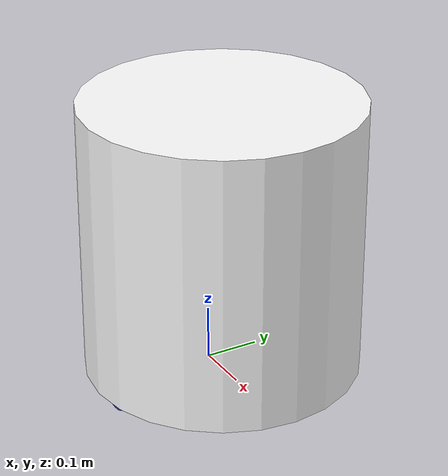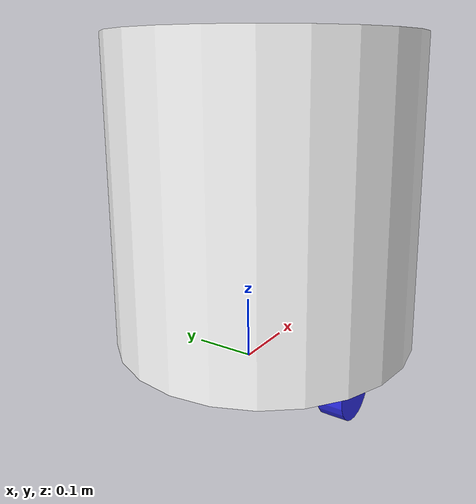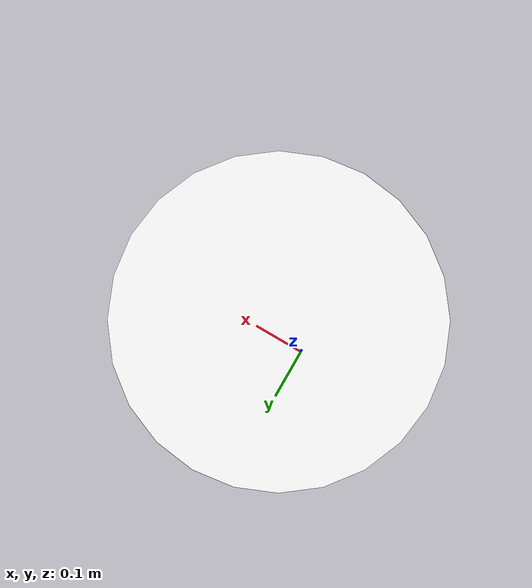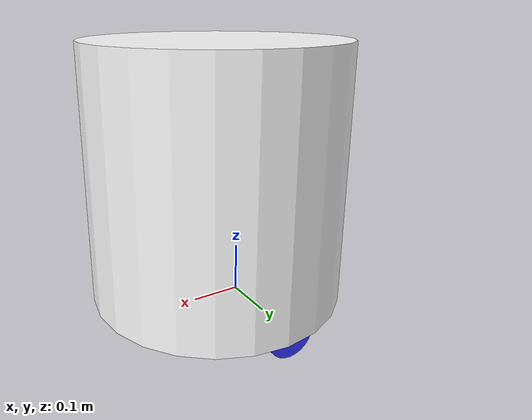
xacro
<?xml version="1.0"?>
<robot xmlns:xacro="http://www.ros.org/wiki/xacro"  name="robot">

    <xacro:include filename="inertial_macros.xacro" />

    <!-- MATERIALS -->

    <material name="white">
        <color rgba="1 1 1 1"/>
    </material>

    <material name="orange">
        <color rgba="1 0.3 0.1 1"/>
    </material>

    <material name="blue">
        <color rgba="0.2 0.2 1 1"/>
    </material>

    <material name="black">
        <color rgba="0 0 0 1"/>
    </material>

    <material name="red">
        <color rgba="1 0 0 1"/>
    </material>

    <!-- BASE LINK -->

    <link name="base_link">
    </link>

    <!-- FOOTPRINT LINK -->

    <joint name = 'base_footprint_joint' type = 'fixed'>
        <parent link = 'base_link'/>
        <child link = 'base_footprint'/>
        <origin xyz= '0 0 0' rpy = '0 0 0'/>
    </joint>

    <link name="base_footprint">
    </link>

    <!--CHASSIS-->

    <joint name="chassis_joint" type="fixed">
        <parent link="base_link"/>
        <child link="chassis"/>
        <origin xyz="-0.1 0 0"/>
    </joint>

    <link name="chassis">
        <visual>
            <origin xyz="0.15 0 0.275" rpy="0 0 0"/>
            <geometry>
                <cylinder length="0.5" radius="0.25" />/>
            </geometry>
            <material name="white"/>
        </visual>
        <collision>
            <origin xyz="0.15 0 0.275" rpy="0 0 0"/>
            <geometry>
                <cylinder length="0.5" radius="0.25" />/>
            </geometry>
        </collision>
        <xacro:inertial_cylinder mass="0.5" length="0.5" radius="0.25">
            <origin xyz="0.15 0 0.275" rpy="0 0 0"/>
        </xacro:inertial_cylinder>
    </link>

    <gazebo reference="chassis">
        <material> Gazebo/White </material>
    </gazebo>

    <!-- LEFT WHEEL -->

    <joint name="left_wheel_joint" type="continuous">
        <parent link="base_link"/>
        <child link="left_wheel"/>
        <origin xyz="0 0.175 0" rpy="-${pi/2} 0 0"/>
        <axis xyz="0 0 1"/>
    </joint>

    <link name="left_wheel">
        <visual>
            <geometry>
                <cylinder length="0.04" radius="0.05" />/>
            </geometry>
            <material name="blue"/>
        </visual>
        <!--PROBLEM 2 wheel drift solved replacing cylinder with sphere-->
        <collision>
            <geometry>
                <sphere radius="0.05" />/>
            </geometry>
        </collision>
        <xacro:inertial_cylinder mass="0.1" length="0.05" radius="0.05">
            <origin xyz="0 0 0" rpy="0 0 0"/>
        </xacro:inertial_cylinder>
    </link>

    <gazebo reference="left_wheel">
        <material> Gazebo/Blue </material>
    </gazebo>

    <!-- RIGHT WHEEL -->

    <joint name="right_wheel_joint" type="continuous">
        <parent link="base_link"/>
        <child link="right_wheel"/>
        <origin xyz="0 -0.175 0" rpy="${pi/2} 0 0"/>
        <axis xyz="0 0 -1"/>
    </joint>

    <link name="right_wheel">
        <visual>
            <geometry>
                <cylinder length="0.04" radius="0.05" />/>
            </geometry>
            <material name="blue"/>
        </visual>
        <collision>
            <geometry>
                <sphere radius="0.05" />/>
            </geometry>
        </collision>
        <xacro:inertial_cylinder mass="0.1" length="0.05" radius="0.05">
            <origin xyz="0 0 0" rpy="0 0 0"/>
        </xacro:inertial_cylinder>
    </link>

    <gazebo reference="right_wheel">
        <material> Gazebo/Blue </material>
    </gazebo>

    <!-- CASTER WHEEL -->

    <joint name="caster_wheel_joint" type="fixed">
        <parent link="chassis"/>
        <child link="caster_wheel"/>
        <origin xyz="0.24 0 0" rpy="0 0 0"/>
    </joint>

    <link name="caster_wheel">
        <visual>
            <geometry>
                <sphere radius="0.05" />
            </geometry>
            <material name="black"/>
        </visual>
        <collision>
            <geometry>
                <sphere radius="0.05" />
            </geometry>
        </collision>
        <xacro:inertial_sphere mass="0.1" radius="0.05">
            <origin xyz="0 0 0" rpy="0 0 0"/>
        </xacro:inertial_sphere>
    </link>

    <gazebo reference="caster_wheel">
        <material> Gazebo/Black </material>
        <!-- reducing frictions -->
        <mu1 value="0.001"/>
        <mu2 value="0.001"/>
    </gazebo>

</robot>
